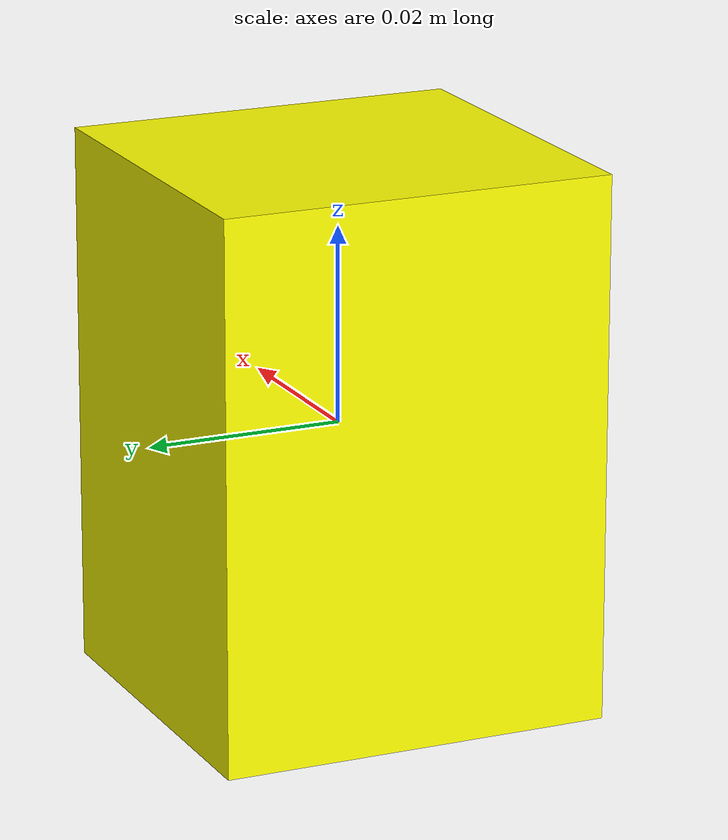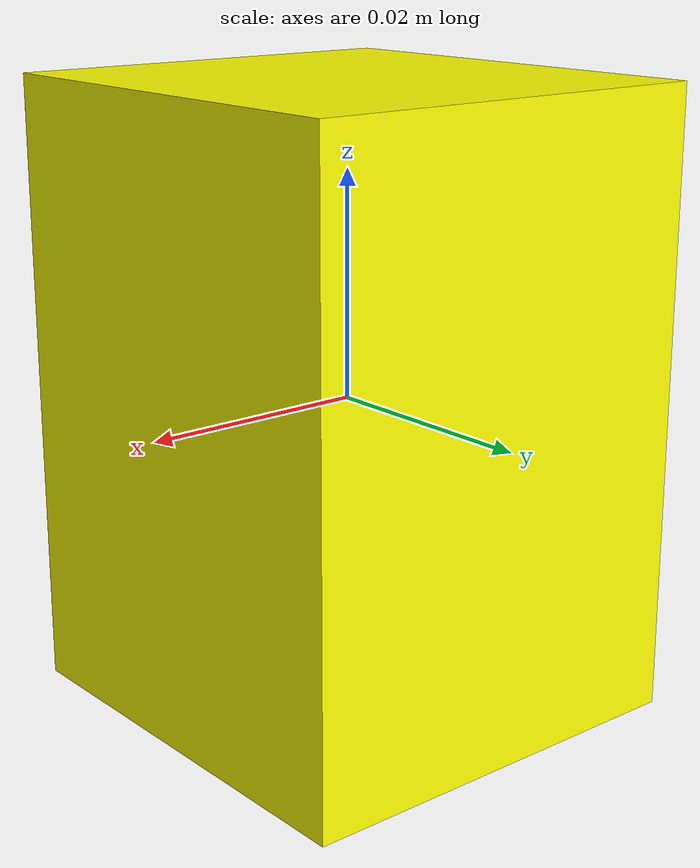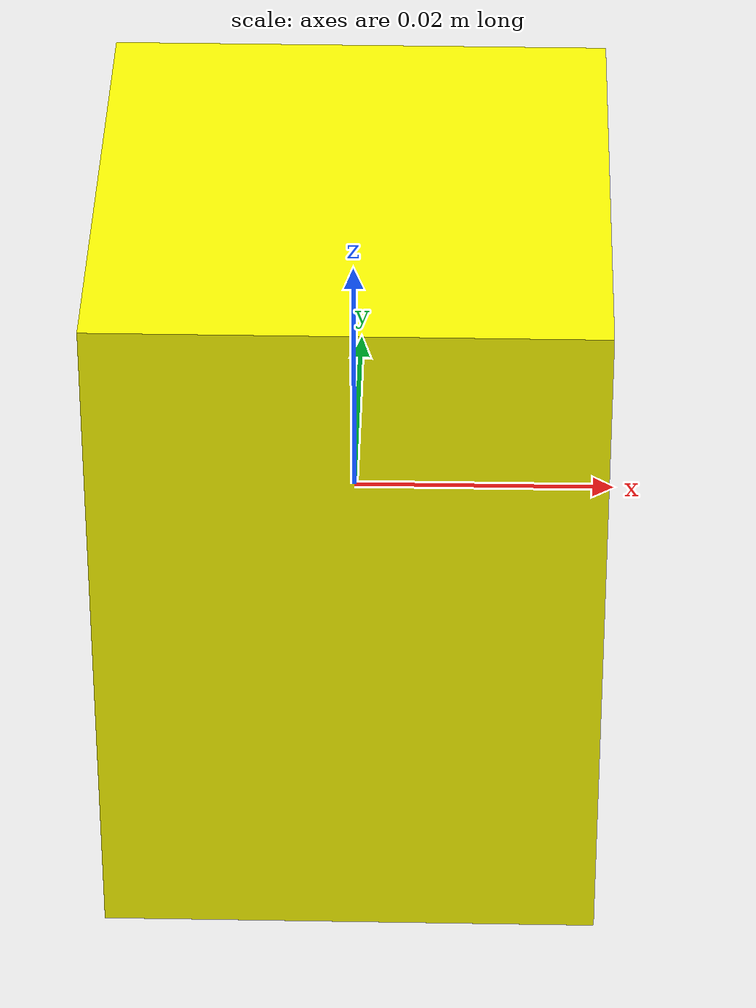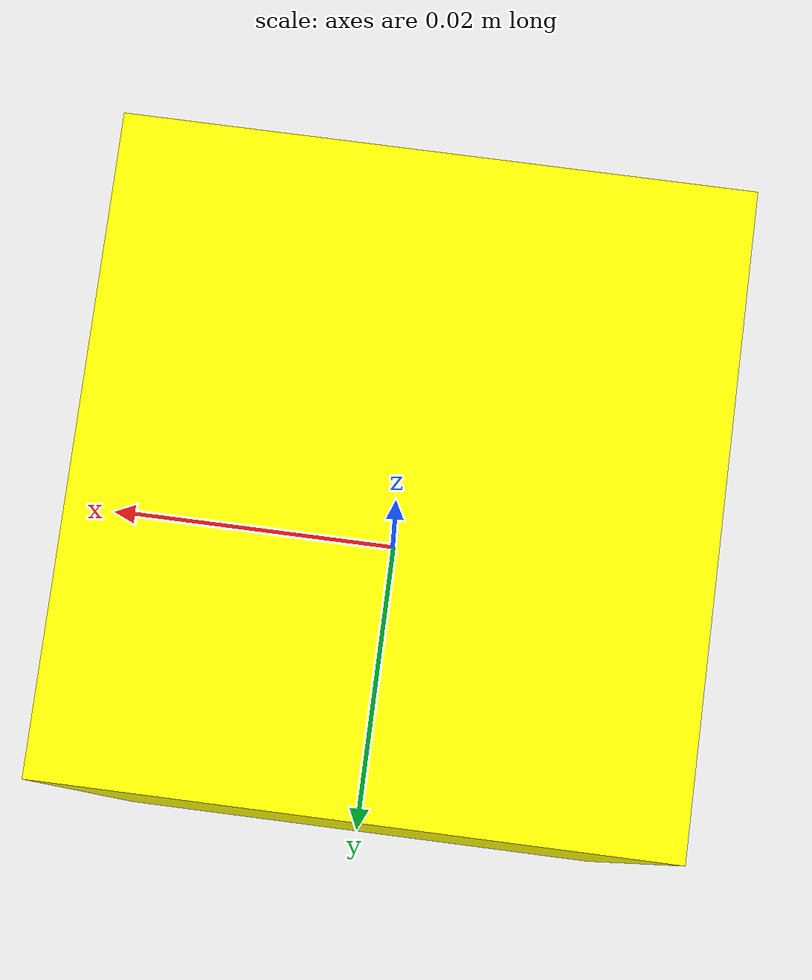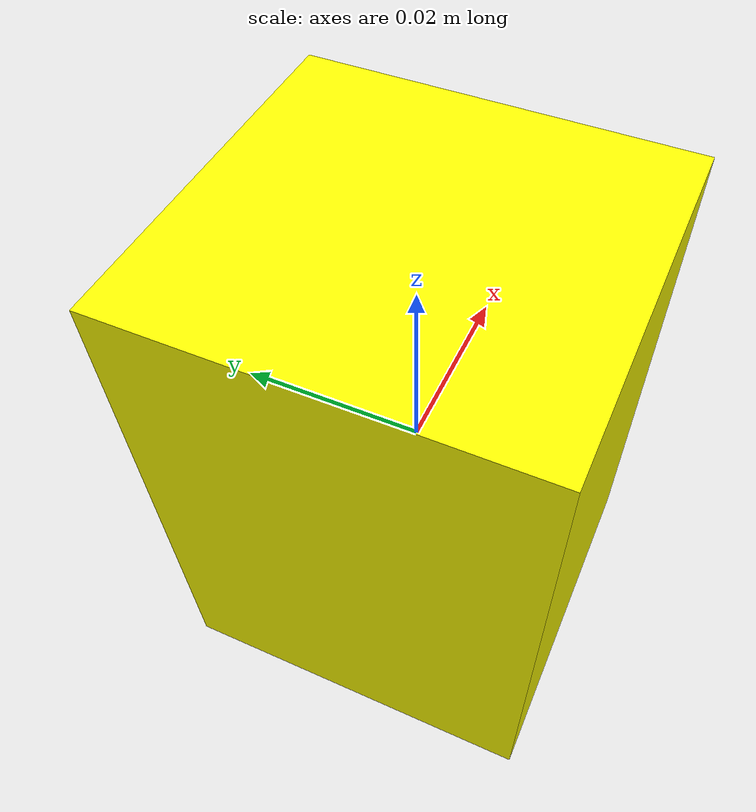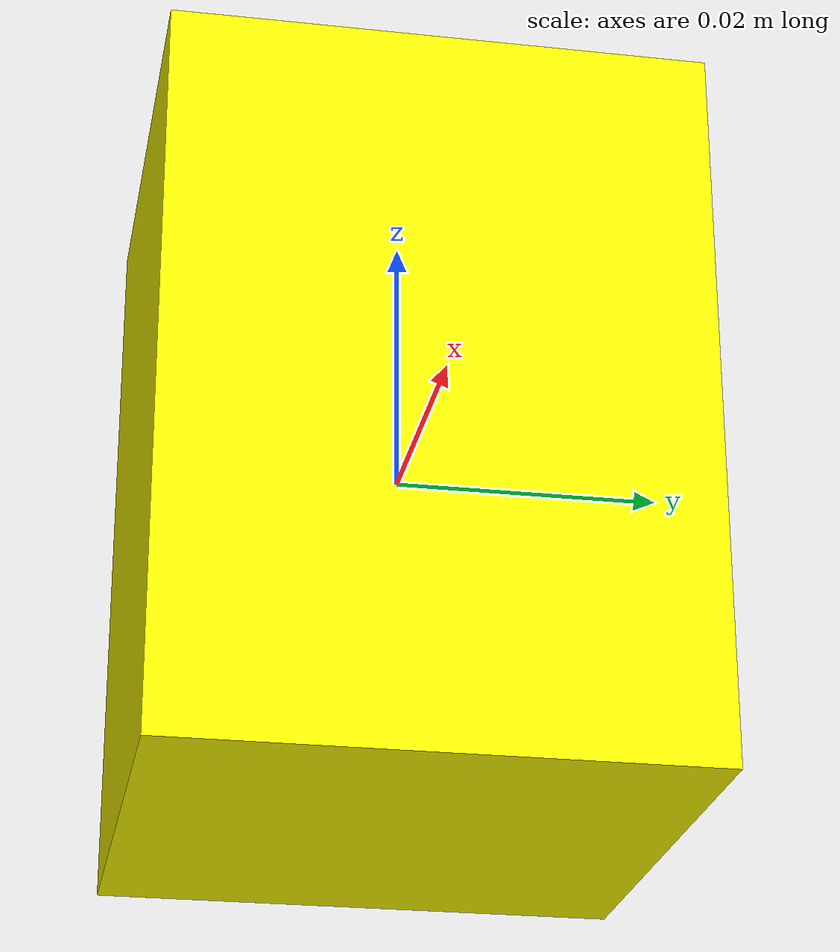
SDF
<?xml version='1.0'?>
<sdf version='1.6'>
  <model name='treasure'>
    <link name='link'>
      <pose frame=''>0 0 0 0 -0 0</pose>
      <inertial>
        <mass>8.303e-05</mass>
        <inertia>
          <ixx>3e-08</ixx>
          <ixy>0</ixy>
          <ixz>0</ixz>
          <iyy>3e-08</iyy>
          <iyz>0</iyz>
          <izz>2e-08</izz>
        </inertia>
        <pose frame=''>0 0 0 0 -0 0</pose>
      </inertial>
      <self_collide>0</self_collide>
      <kinematic>0</kinematic>
      <gravity>1</gravity>
      <visual name='visual'>
        <geometry>
          <box>
            <size>0.037915 0.039782 0.055068</size>
          </box>
        </geometry>
        <material>
          <script>
            <name>Gazebo/Grey</name>
            <uri>file://media/materials/scripts/gazebo.material</uri>
          </script>
          <ambient>1 1 0 1</ambient>
          <diffuse>1 1 0 1</diffuse>
          <specular>1 1 0 1</specular>
          <emissive>1 1 0 1</emissive>
          <shader type='vertex'>
            <normal_map>__default__</normal_map>
          </shader>
        </material>
        <pose frame=''>0 0 0 0 -0 0</pose>
        <cast_shadows>1</cast_shadows>
        <transparency>0</transparency>
      </visual>
      <collision name='collision'>
        <laser_retro>0</laser_retro>
        <max_contacts>10</max_contacts>
        <pose frame=''>0 0 0 0 -0 0</pose>
        <geometry>
          <box>
            <size>0.037915 0.039782 0.055068</size>
          </box>
        </geometry>
        <surface>
          <friction>
            <ode>
              <mu>1</mu>
              <mu2>1</mu2>
              <fdir1>0 0 0</fdir1>
              <slip1>0</slip1>
              <slip2>0</slip2>
            </ode>
            <torsional>
              <coefficient>1</coefficient>
              <patch_radius>0</patch_radius>
              <surface_radius>0</surface_radius>
              <use_patch_radius>1</use_patch_radius>
              <ode>
                <slip>0</slip>
              </ode>
            </torsional>
          </friction>
          <bounce>
            <restitution_coefficient>0</restitution_coefficient>
            <threshold>1e+06</threshold>
          </bounce>
          <contact>
            <collide_without_contact>0</collide_without_contact>
            <collide_without_contact_bitmask>1</collide_without_contact_bitmask>
            <collide_bitmask>1</collide_bitmask>
            <ode>
              <soft_cfm>0</soft_cfm>
              <soft_erp>0.2</soft_erp>
              <kp>1e+13</kp>
              <kd>1</kd>
              <max_vel>0.01</max_vel>
              <min_depth>0</min_depth>
            </ode>
            <bullet>
              <split_impulse>1</split_impulse>
              <split_impulse_penetration_threshold>-0.01</split_impulse_penetration_threshold>
              <soft_cfm>0</soft_cfm>
              <soft_erp>0.2</soft_erp>
              <kp>1e+13</kp>
              <kd>1</kd>
            </bullet>
          </contact>
        </surface>
      </collision>
    </link>
    <static>0</static>
    <allow_auto_disable>1</allow_auto_disable>
  </model>
</sdf>
